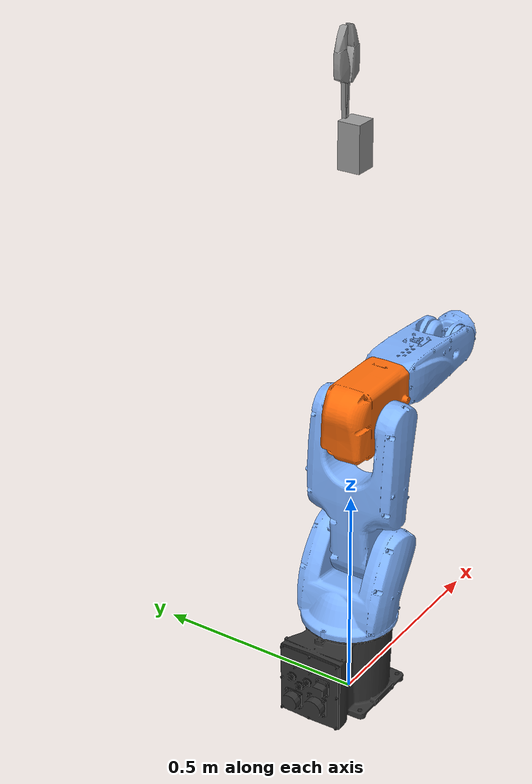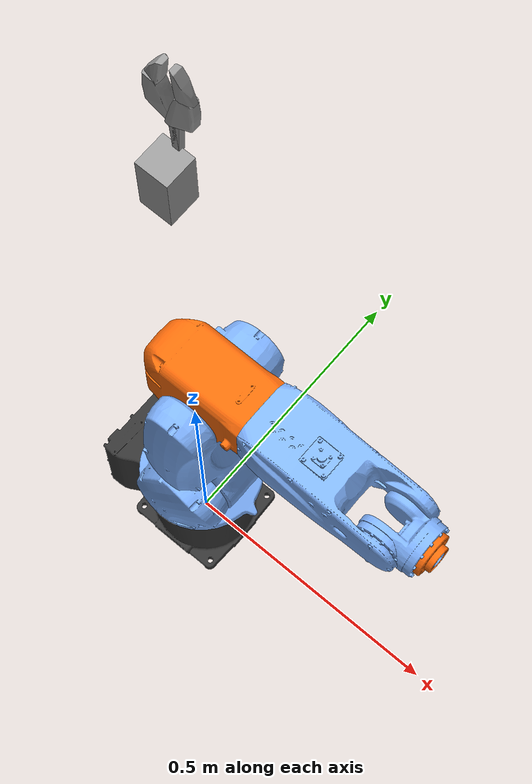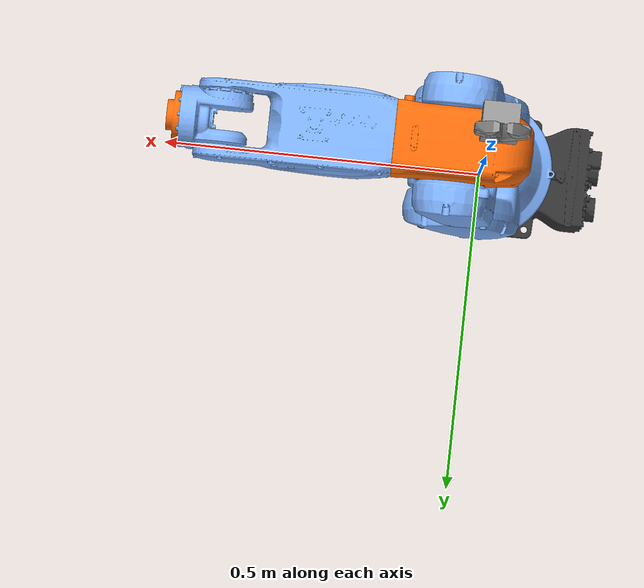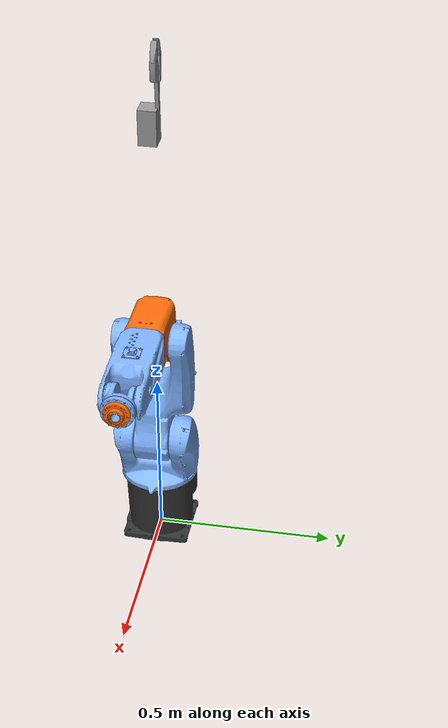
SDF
<?xml version="1.0" ?>
<sdf version='1.6'>
  <world name='default'>
  <model name='lbr_iiwa_with_wsg50'>
    <link name='lbr_iiwa_link_0'>
      <pose frame=''>0 0 0 0 0 0</pose>
      <inertial>
        <pose frame=''>-0.1 0 0.07 0 -0 0</pose>
        <mass>0</mass>
        <inertia>
          <ixx>0.05</ixx>
          <ixy>0</ixy>
          <ixz>0</ixz>
          <iyy>0.06</iyy>
          <iyz>0</iyz>
          <izz>0.03</izz>
        </inertia>
      </inertial>
      <collision name='lbr_iiwa_link_0_collision'>
        <pose frame=''>0 0 0 0 0 0</pose>
        <geometry>
          <mesh>
            <scale>1 1 1</scale>
            <uri>../stls/mz07/mz07_base.stl</uri>
          </mesh>
        </geometry>
      </collision>
      <visual name='lbr_iiwa_link_0_visual'>
        <pose frame=''>0 0 0 0 0 0</pose>
        <geometry>
          <mesh>
            <scale>1 1 1</scale>
            <uri>../stls/mz07/mz07_base.stl</uri>
          </mesh>
        </geometry>
        <material>
          <ambient>1 0 0 1</ambient>
          <diffuse>0.2 0.2 0.2 1.0</diffuse>
          <specular>0.4 0.4 0.4 1</specular>
          <emissive>0 0 0 0</emissive>
        </material>
      </visual>
    </link>
    <link name='lbr_iiwa_link_1'>
      <pose frame=''>0 0 0.197 0 0 0</pose>
      <inertial>
        <pose frame=''>0 -0.03 0.12 0 -0 0</pose>
        <mass>4</mass>
        <inertia>
          <ixx>0.1</ixx>
          <ixy>0</ixy>
          <ixz>0</ixz>
          <iyy>0.09</iyy>
          <iyz>0</iyz>
          <izz>0.02</izz>
        </inertia>
      </inertial>
      <collision name='lbr_iiwa_link_1_collision'>
        <pose frame=''>0 0 0 0 0 0</pose>
        <geometry>
          <mesh>
            <scale>1 1 1</scale>
            <uri>../stls/mz07/mz07_link1.stl</uri>
          </mesh>
        </geometry>
      </collision>
      <visual name='lbr_iiwa_link_1_visual'>
        <pose frame=''>0 0 0 0 0 0</pose>
        <geometry>
          <mesh>
            <scale>1 1 1</scale>
            <uri>../stls/mz07/mz07_link1.stl</uri>
          </mesh>
        </geometry>
        <material>
          <ambient>1 0 0 1</ambient>
          <diffuse>0.5 0.7 1.0 1.0</diffuse>
          <specular>0.5 0.5 0.5 1</specular>
          <emissive>0 0 0 0</emissive>
        </material>
      </visual>
    </link>
    <joint name='J0' type='revolute'>
      <child>lbr_iiwa_link_1</child>
      <parent>lbr_iiwa_link_0</parent>
      <axis>
        <xyz>0 0 1</xyz>
        <limit>
          <lower>-2.96705981</lower>
          <upper>2.96705981</upper>
          <effort>300</effort>
          <velocity>10</velocity>
        </limit>
        <dynamics>
          <damping>0.5</damping>
          <friction>0</friction>
          <spring_reference>0</spring_reference>
          <spring_stiffness>0</spring_stiffness>
        </dynamics>
      </axis>
    </joint>
    <link name='lbr_iiwa_link_2'>
      <pose frame=''>0.05 0 0.345 0 0 0</pose>
      <inertial>
        <pose frame=''>0.0003 0.059 0.042 0 -0 0</pose>
        <mass>4</mass>
        <inertia>
          <ixx>0.05</ixx>
          <ixy>0</ixy>
          <ixz>0</ixz>
          <iyy>0.018</iyy>
          <iyz>0</iyz>
          <izz>0.044</izz>
        </inertia>
      </inertial>
      <collision name='lbr_iiwa_link_2_collision'>
        <pose frame=''>0 0 0 0 0 0</pose>
        <geometry>
          <mesh>
            <scale>1 1 1</scale>
            <uri>../stls/mz07/mz07_link2.stl</uri>
          </mesh>
        </geometry>
      </collision>
      <visual name='lbr_iiwa_link_2_visual'>
        <pose frame=''>0 0 0 0 0 0</pose>
        <geometry>
          <mesh>
            <scale>1 1 1</scale>
            <uri>../stls/mz07/mz07_link2.stl</uri>
          </mesh>
        </geometry>
        <material>
          <ambient>1 0 0 1</ambient>
          <diffuse>0.5 0.7 1.0 1.0</diffuse>
          <specular>0.5 0.5 0.5 1</specular>
          <emissive>0 0 0 0</emissive>
        </material>
      </visual>
    </link>
    <joint name='J1' type='revolute'>
      <child>lbr_iiwa_link_2</child>
      <parent>lbr_iiwa_link_1</parent>
      <axis>
        <xyz>0 1 0</xyz>
        <limit>
          <lower>-1.39626344</lower>
          <upper>2.356194555</upper>
          <effort>300</effort>
          <velocity>10</velocity>
        </limit>
        <dynamics>
          <damping>0.5</damping>
          <friction>0</friction>
          <spring_reference>0</spring_reference>
          <spring_stiffness>0</spring_stiffness>
        </dynamics>
      </axis>
    </joint>
    <link name='lbr_iiwa_link_3'>
      <pose frame=''>0.05 0 0.675 0 0 0</pose>
      <inertial>
        <pose frame=''>0 0.03 0.13 0 -0 0</pose>
        <mass>3</mass>
        <inertia>
          <ixx>0.08</ixx>
          <ixy>0</ixy>
          <ixz>0</ixz>
          <iyy>0.075</iyy>
          <iyz>0</iyz>
          <izz>0.01</izz>
        </inertia>
      </inertial>
      <collision name='lbr_iiwa_link_3_collision'>
        <pose frame=''>0 0 0 0 0 0</pose>
        <geometry>
          <mesh>
            <scale>1 1 1</scale>
            <uri>../stls/mz07/mz07_link3.stl</uri>
          </mesh>
        </geometry>
      </collision>
      <visual name='lbr_iiwa_link_3_visual'>
        <pose frame=''>0 0 0 0 0 0</pose>
        <geometry>
          <mesh>
            <scale>1 1 1</scale>
            <uri>../stls/mz07/mz07_link3.stl</uri>
          </mesh>
        </geometry>
        <material>
          <ambient>1 0 0 1</ambient>
          <diffuse>1.0 0.423529411765 0.0392156862745 1.0</diffuse>
          <specular>0.5 0.5 0.5 1</specular>
          <emissive>0 0 0 0</emissive>
        </material>
      </visual>
    </link>
    <joint name='J2' type='revolute'>
      <child>lbr_iiwa_link_3</child>
      <parent>lbr_iiwa_link_2</parent>
      <axis>
        <xyz>0 1 0</xyz>
        <limit>
          <lower>-3.14159274</lower>
          <upper>0.802851478</upper>
          <effort>300</effort>
          <velocity>10</velocity>
        </limit>
        <dynamics>
          <damping>0.5</damping>
          <friction>0</friction>
          <spring_reference>0</spring_reference>
          <spring_stiffness>0</spring_stiffness>
        </dynamics>
      </axis>
    </joint>
    <link name='lbr_iiwa_link_4'>
      <pose frame=''>0.14 0 0.72 0 0 0</pose>
      <inertial>
        <pose frame=''>0 0.067 0.034 0 -0 0</pose>
        <mass>2.7</mass>
        <inertia>
          <ixx>0.03</ixx>
          <ixy>0</ixy>
          <ixz>0</ixz>
          <iyy>0.01</iyy>
          <iyz>0</iyz>
          <izz>0.029</izz>
        </inertia>
      </inertial>
      <collision name='lbr_iiwa_link_4_collision'>
        <pose frame=''>0 0 0 0 0 0</pose>
        <geometry>
          <mesh>
            <scale>1 1 1</scale>
            <uri>../stls/mz07/mz07_link4.stl</uri>
          </mesh>
        </geometry>
      </collision>
      <visual name='lbr_iiwa_link_4_visual'>
        <pose frame=''>0 0 0 0 0 0</pose>
        <geometry>
          <mesh>
            <scale>1 1 1</scale>
            <uri>../stls/mz07/mz07_link4.stl</uri>
          </mesh>
        </geometry>
        <material>
          <ambient>1 0 0 1</ambient>
          <diffuse>0.5 0.7 1.0 1.0</diffuse>
          <specular>0.5 0.5 0.5 1</specular>
          <emissive>0 0 0 0</emissive>
        </material>
      </visual>
    </link>
    <joint name='J3' type='revolute'>
      <child>lbr_iiwa_link_4</child>
      <parent>lbr_iiwa_link_3</parent>
      <axis>
        <xyz>1 0 0</xyz>
        <limit>
          <lower>-3.31612567</lower>
          <upper>3.31612567</upper>
          <effort>300</effort>
          <velocity>10</velocity>
        </limit>
        <dynamics>
          <damping>0.5</damping>
          <friction>0</friction>
          <spring_reference>0</spring_reference>
          <spring_stiffness>0</spring_stiffness>
        </dynamics>
      </axis>
    </joint>
    <link name='lbr_iiwa_link_5'>
      <pose frame=''>0.39 0 0.72 0 0 0</pose>
      <inertial>
        <pose frame=''>0.0001 0.021 0.076 0 -0 0</pose>
        <mass>1.7</mass>
        <inertia>
          <ixx>0.02</ixx>
          <ixy>0</ixy>
          <ixz>0</ixz>
          <iyy>0.018</iyy>
          <iyz>0</iyz>
          <izz>0.005</izz>
        </inertia>
      </inertial>
      <collision name='lbr_iiwa_link_5_collision'>
        <pose frame=''>0 0 0 0 0 0</pose>
        <geometry>
          <mesh>
            <scale>1 1 1</scale>
            <uri>../stls/mz07/mz07_link5.stl</uri>
          </mesh>
        </geometry>
      </collision>
      <visual name='lbr_iiwa_link_5_visual'>
        <pose frame=''>0 0 0 0 0 0</pose>
        <geometry>
          <mesh>
            <scale>1 1 1</scale>
            <uri>../stls/mz07/mz07_link5.stl</uri>
          </mesh>
        </geometry>
        <material>
          <ambient>1 0 0 1</ambient>
          <diffuse>0.5 0.7 1.0 1.0</diffuse>
          <specular>0.5 0.5 0.5 1</specular>
          <emissive>0 0 0 0</emissive>
        </material>
      </visual>
    </link>
    <joint name='J4' type='revolute'>
      <child>lbr_iiwa_link_5</child>
      <parent>lbr_iiwa_link_4</parent>
      <axis>
        <xyz>0 1 0</xyz>
        <limit>
          <lower>-2.09439516</lower>
          <upper>2.09439516</upper>
          <effort>300</effort>
          <velocity>10</velocity>
        </limit>
        <dynamics>
          <damping>0.5</damping>
          <friction>0</friction>
          <spring_reference>0</spring_reference>
          <spring_stiffness>0</spring_stiffness>
        </dynamics>
      </axis>
    </joint>
    <link name='lbr_iiwa_link_6'>
      <pose frame=''>0.453 0 0.72 0 0 0</pose>
      <inertial>
        <pose frame=''>0 0.0006 0.0004 0 -0 0</pose>
        <mass>1.8</mass>
        <inertia>
          <ixx>0.005</ixx>
          <ixy>0</ixy>
          <ixz>0</ixz>
          <iyy>0.0036</iyy>
          <iyz>0</iyz>
          <izz>0.0047</izz>
        </inertia>
      </inertial>
      <collision name='lbr_iiwa_link_6_collision'>
        <pose frame=''>0 0 0 0 0 0</pose>
        <geometry>
          <mesh>
            <scale>1 1 1</scale>
            <uri>../stls/mz07/mz07_link6.stl</uri>
          </mesh>
        </geometry>
      </collision>
      <visual name='lbr_iiwa_link_6_visual'>
        <pose frame=''>0 0 0 0 0 0</pose>
        <geometry>
          <mesh>
            <scale>1 1 1</scale>
            <uri>../stls/mz07/mz07_link6.stl</uri>
          </mesh>
        </geometry>
        <material>
          <ambient>1 0 0 1</ambient>
          <diffuse>1.0 0.423529411765 0.0392156862745 1.0</diffuse>
          <specular>0.5 0.5 0.5 1</specular>
          <emissive>0 0 0 0</emissive>
        </material>
      </visual>
    </link>
    <joint name='J5' type='revolute'>
      <child>lbr_iiwa_link_6</child>
      <parent>lbr_iiwa_link_5</parent>
      <axis>
        <xyz>1 0 0</xyz>
        <limit>
          <lower>-6.28318548</lower>
          <upper>6.28318548</upper>
          <effort>300</effort>
          <velocity>10</velocity>
        </limit>
        <dynamics>
          <damping>0.5</damping>
          <friction>0</friction>
          <spring_reference>0</spring_reference>
          <spring_stiffness>0</spring_stiffness>
        </dynamics>
      </axis>
    </joint>
    <link name='lbr_iiwa_link_7'>
      <pose frame=''>0 0 0 0 0 0</pose>
      <inertial>
        <pose frame=''>0 0 0.02 0 -0 0</pose>
        <mass>1.3</mass>
        <inertia>
          <ixx>0.001</ixx>
          <ixy>0</ixy>
          <ixz>0</ixz>
          <iyy>0.001</iyy>
          <iyz>0</iyz>
          <izz>0.001</izz>
        </inertia>
      </inertial>
      <collision name='lbr_iiwa_link_7_collision'>
        <pose frame=''>0 0 0 0 0 0</pose>
        <geometry>
          <mesh>
            <scale>1 1 1</scale>
            <uri>meshes/link_7.stl</uri>
          </mesh>
        </geometry>
      </collision>
      <visual name='lbr_iiwa_link_7_visual'>
        <pose frame=''>0 0 0 0 0 0</pose>
        <geometry>
          <mesh>
            <scale>1 1 1</scale>
            <uri>meshes/link_7.obj</uri>
          </mesh>
        </geometry>
        <material>
          <ambient>1 0 0 1</ambient>
          <diffuse>0.6 0.6 0.6 1</diffuse>
          <specular>0.5 0.5 0.5 1</specular>
          <emissive>0 0 0 0</emissive>
        </material>
      </visual>
    </link>
    <joint name='J6' type='revolute'>
      <child>lbr_iiwa_link_7</child>
      <parent>lbr_iiwa_link_6</parent>
      <axis>
        <xyz>0 0 1</xyz>
        <limit>
          <lower>0</lower>
          <upper>0</upper>
          <effort>300</effort>
          <velocity>10</velocity>
        </limit>
        <dynamics>
          <damping>0.5</damping>
          <friction>0</friction>
          <spring_reference>0</spring_reference>
          <spring_stiffness>0</spring_stiffness>
        </dynamics>
      </axis>
    </joint>

    <!-- Attach the base of the gripper to the end of the arm -->
    <joint name='gripper_to_arm' type='continuous'>
      <parent>lbr_iiwa_link_7</parent>
      <child>base_link</child>
      <axis>
        <xyz>0 0 1</xyz>
      </axis>
    </joint>

    <link name='base_link'>
      <pose frame=''>0 0 1.305 0 -0 0</pose>
      <inertial>
        <pose frame=''>0 0 0 0 -0 0</pose>
        <mass>0.2</mass>
        <inertia>
          <ixx>1</ixx>
          <ixy>0</ixy>
          <ixz>0</ixz>
          <iyy>1</iyy>
          <iyz>0</iyz>
          <izz>1</izz>
        </inertia>
      </inertial>
      <visual name='base_link_visual'>
        <pose frame=''>0 0 0 0 0 0</pose>
        <geometry>
		  <box>
		     <size>0.05 0.05 0.1 </size>
		  </box>
        </geometry>
        <material>
          <ambient>1 0 0 1</ambient>
          <diffuse>0.6 0.6 0.6 1</diffuse>
          <specular>0.5 0.5 0.5 1</specular>
          <emissive>0 0 0 0</emissive>
        </material>
      </visual>
        <collision name='base_link_collision'>
        <pose frame=''>0 0 0 0 0 0</pose>
        <geometry>
		  <box>
		     <size>0.05 0.05 0.1 </size>
		  </box>
        </geometry>
        <material>
          <ambient>1 0 0 1</ambient>
          <diffuse>0.6 0.6 0.6 1</diffuse>
          <specular>0.5 0.5 0.5 1</specular>
          <emissive>0 0 0 0</emissive>
        </material>
      </collision>
    </link>

    <joint name='base_left_finger_joint' type='revolute'>
      <parent>base_link</parent>
      <child>left_finger</child>
      <axis>
        <xyz>0 1 0</xyz>
        <limit>
          <lower>-10.4</lower>
          <upper>10.01</upper>
          <effort>100</effort>
          <velocity>0</velocity>
        </limit>
        <dynamics>
          <damping>0</damping>
          <friction>0</friction>
          <spring_reference>0</spring_reference>
          <spring_stiffness>0</spring_stiffness>
        </dynamics>
      </axis>
    </joint>
    <link name='left_finger'>
      <pose frame=''>0 0.024 1.35 0 -0.05 0</pose>
      <inertial>
        <pose frame=''>0 0 0.04 0 0 0</pose>
        <mass>0.2</mass>
        <inertia>
          <ixx>0.1</ixx>
          <ixy>0</ixy>
          <ixz>0</ixz>
          <iyy>0.1</iyy>
          <iyz>0</iyz>
          <izz>0.1</izz>
        </inertia>
      </inertial>
      <visual name='left_finger_visual'>
        <pose frame=''>0 0 0.04 0 0 0</pose>
        <geometry>
          <box>
            <size>0.01 0.01 0.08</size>
          </box>
        </geometry>
        <material>
          <ambient>1 0 0 1</ambient>
          <diffuse>0.6 0.6 0.6 1</diffuse>
          <specular>0.5 0.5 0.5 1</specular>
          <emissive>0 0 0 0</emissive>
        </material>
      </visual>
       <collision name='left_finger_collision'>
        <pose frame=''>0 0 0.04 0 0 0</pose>
        <geometry>
          <box>
            <size>0.01 0.01 0.08</size>
          </box>
        </geometry>

      </collision>
    </link>
    <joint name='left_finger_base_joint' type='fixed'>
      <parent>left_finger</parent>
      <child>left_finger_base</child>
    </joint>
    <link name='left_finger_base'>
    <contact>
        <lateral_friction>0.8</lateral_friction>
        <spinning_friction>.1</spinning_friction>
      </contact>
      <pose frame=''>-0.005 0.024 1.43 0 -0.3 0</pose>
      <inertial>
        <pose frame=''>-0.003 0 0.04 0 0 0 </pose>
        <mass>0.2</mass>
        <inertia>
          <ixx>0.1</ixx>
          <ixy>0</ixy>
          <ixz>0</ixz>
          <iyy>0.1</iyy>
          <iyz>0</iyz>
          <izz>0.1</izz>
        </inertia>
      </inertial>
      <visual name='left_finger_base_visual'>
        <pose frame=''>0 0 0 0 0 0 </pose>
        <geometry>
          <mesh>
            <scale>1 1 1 </scale>
            <uri>meshes/finger_base_left.stl</uri>
          </mesh>
        </geometry>
        <material>
          <ambient>1 0 0 1</ambient>
          <diffuse>0.6 0.6 0.6 1</diffuse>
          <specular>0.5 0.5 0.5 1</specular>
          <emissive>0 0 0 0</emissive>
        </material>
      </visual>
      <collision name='left_finger_base_collision'>
        <pose frame=''>0 0 0 0 0 0 </pose>
        <geometry>
          <mesh>
            <scale>1 1 1 </scale>
            <uri>meshes/finger_base_left.stl</uri>
          </mesh>
        </geometry>
      </collision>
    </link>
    <joint name='left_base_tip_joint' type='revolute'>
      <parent>left_finger_base</parent>
      <child>left_finger_tip</child>
      <axis>
        <xyz>0 1 0</xyz>
        <limit>
          <lower>-10.1</lower>
          <upper>10.3</upper>
          <effort>0</effort>
          <velocity>0</velocity>
        </limit>
        <dynamics>
          <damping>0</damping>
          <friction>0</friction>
          <spring_reference>0</spring_reference>
          <spring_stiffness>0</spring_stiffness>
        </dynamics>
      </axis>
    </joint>
    <link name='left_finger_tip'>
      <contact>
        <lateral_friction>0.8</lateral_friction>
        <spinning_friction>.1</spinning_friction>
      </contact>
      <pose frame=''>-0.02 0.024 1.49 0 0.2 0</pose>
      <inertial>
        <pose frame=''>-0.005 0 0.026 0 0 0 </pose>
        <mass>0.2</mass>
        <inertia>
          <ixx>0.1</ixx>
          <ixy>0</ixy>
          <ixz>0</ixz>
          <iyy>0.1</iyy>
          <iyz>0</iyz>
          <izz>0.1</izz>
        </inertia>
      </inertial>
      <visual name='left_finger_tip_visual'>
        <pose frame=''>0 0 0 0 0 0</pose>
        <geometry>
          <mesh>
            <scale>1 1 1 </scale>
            <uri>meshes/finger_tip_left.stl</uri>
          </mesh>
        </geometry>
        <material>
          <ambient>1 0 0 1</ambient>
          <diffuse>0.6 0.6 0.6 1</diffuse>
          <specular>0.5 0.5 0.5 1</specular>
          <emissive>0 0 0 0</emissive>
        </material>
      </visual>
      <collision name='left_finger_tip_collision'>
        <pose frame=''>0 0 0 0 0 0</pose>
        <geometry>
          <mesh>
            <scale>1 1 1 </scale>
            <uri>meshes/finger_tip_left.stl</uri>
          </mesh>
        </geometry>
      </collision>
    </link>
    <joint name='base_right_finger_joint' type='revolute'>
      <parent>base_link</parent>
      <child>right_finger</child>
      <axis>
        <xyz>0 1 0</xyz>
        <limit>
          <lower>-10.01</lower>
          <upper>10.4</upper>
          <effort>100</effort>
          <velocity>0</velocity>
        </limit>
        <dynamics>
          <damping>0</damping>
          <friction>0</friction>
          <spring_reference>0</spring_reference>
          <spring_stiffness>0</spring_stiffness>
        </dynamics>
      </axis>
    </joint>
    <link name='right_finger'>
    <contact>
        <lateral_friction>0.8</lateral_friction>
        <spinning_friction>.1</spinning_friction>
      </contact>
      <pose frame=''>0 0.024 1.35 0 0.05 0</pose>
      <inertial>
        <pose frame=''>0 0 0.04 0 0 0</pose>
        <mass>0.2</mass>
        <inertia>
          <ixx>0.1</ixx>
          <ixy>0</ixy>
          <ixz>0</ixz>
          <iyy>0.1</iyy>
          <iyz>0</iyz>
          <izz>0.1</izz>
        </inertia>
      </inertial>
      <visual name='right_finger_visual'>
        <pose frame=''>0 0 0.04 0 0 0</pose>
        <geometry>
          <box>
            <size>0.01 0.01 0.08</size>
          </box>
        </geometry>
        <material>
          <ambient>1 0 0 1</ambient>
          <diffuse>0.6 0.6 0.6 1</diffuse>
          <specular>0.5 0.5 0.5 1</specular>
          <emissive>0 0 0 0</emissive>
        </material>
      </visual>
      <collision name='right_finger_collision'>
        <pose frame=''>0 0 0.04 0 0 0</pose>
        <geometry>
          <box>
            <size>0.01 0.01 0.08</size>
          </box>
        </geometry>
        <material>
          <ambient>1 0 0 1</ambient>
          <diffuse>0.6 0.6 0.6 1</diffuse>
          <specular>0.5 0.5 0.5 1</specular>
          <emissive>0 0 0 0</emissive>
        </material>
      </collision>
    </link>
    <joint name='right_finger_base_joint' type='fixed'>
      <parent>right_finger</parent>
      <child>right_finger_base</child>
    </joint>
    <link name='right_finger_base'>
    <contact>
        <lateral_friction>0.8</lateral_friction>
        <spinning_friction>.1</spinning_friction>
      </contact>
      <pose frame=''>0.005 0.024 1.43 0 0.3 0</pose>
      <inertial>
        <pose frame=''>0.003 0 0.04 0 0 0 </pose>
        <mass>0.2</mass>
        <inertia>
          <ixx>0.1</ixx>
          <ixy>0</ixy>
          <ixz>0</ixz>
          <iyy>0.1</iyy>
          <iyz>0</iyz>
          <izz>0.1</izz>
        </inertia>
      </inertial>
      <visual name='right_finger_base_visual'>
        <pose frame=''>0 0 0 0 0 0 </pose>
        <geometry>
          <mesh>
            <scale>1 1 1 </scale>
            <uri>meshes/finger_base_right.stl</uri>
          </mesh>
        </geometry>
        <material>
          <ambient>1 0 0 1</ambient>
          <diffuse>0.6 0.6 0.6 1</diffuse>
          <specular>0.5 0.5 0.5 1</specular>
          <emissive>0 0 0 0</emissive>
        </material>
      </visual>
      <collision name='right_finger_base_collision'>
        <pose frame=''>0 0 0 0 0 0 </pose>
        <geometry>
          <mesh>
            <scale>1 1 1 </scale>
            <uri>meshes/finger_base_right.stl</uri>
          </mesh>
        </geometry>
      </collision>
    </link>
    <joint name='right_base_tip_joint' type='revolute'>
      <parent>right_finger_base</parent>
      <child>right_finger_tip</child>
      <axis>
        <xyz>0 1 0</xyz>
        <limit>
          <lower>-10.3</lower>
          <upper>10.1</upper>
          <effort>0</effort>
          <velocity>0</velocity>
        </limit>
        <dynamics>
          <damping>0</damping>
          <friction>0</friction>
          <spring_reference>0</spring_reference>
          <spring_stiffness>0</spring_stiffness>
        </dynamics>
      </axis>
    </joint>
    <link name='right_finger_tip'>
      <contact>
        <lateral_friction>0.8</lateral_friction>
        <spinning_friction>.1</spinning_friction>
      </contact>
      <pose frame=''>0.02 0.024 1.49 0 -0.2 0</pose>
      <inertial>
        <pose frame=''>0.005 0 0.026 0 0 0 </pose>
        <mass>0.2</mass>
        <inertia>
          <ixx>0.1</ixx>
          <ixy>0</ixy>
          <ixz>0</ixz>
          <iyy>0.1</iyy>
          <iyz>0</iyz>
          <izz>0.1</izz>
        </inertia>
      </inertial>
      <visual name='right_finger_visual'>
        <pose frame=''>0 0 0 0 0 0</pose>
        <geometry>
          <mesh>
            <scale>1 1 1 </scale>
            <uri>meshes/finger_tip_right.stl</uri>
          </mesh>
        </geometry>
        <material>
          <ambient>1 0 0 1</ambient>
          <diffuse>0.6 0.6 0.6 1</diffuse>
          <specular>0.5 0.5 0.5 1</specular>
          <emissive>0 0 0 0</emissive>
        </material>
      </visual>
      <collision name='right_finger_tip_collision'>
        <pose frame=''>0 0 0 0 0 0</pose>
        <geometry>
          <mesh>
            <scale>1 1 1 </scale>
            <uri>meshes/finger_tip_right.stl</uri>
          </mesh>
        </geometry>
      </collision>
    </link>
  </model>
</world>
</sdf>
